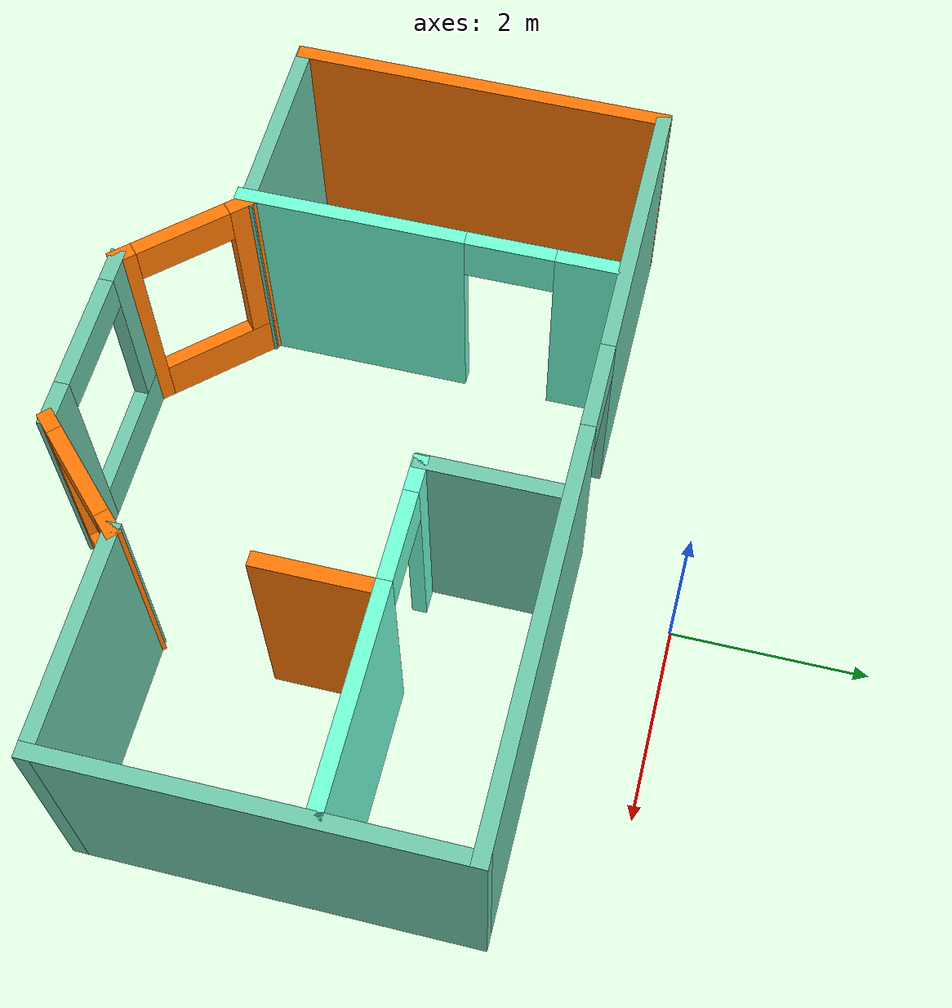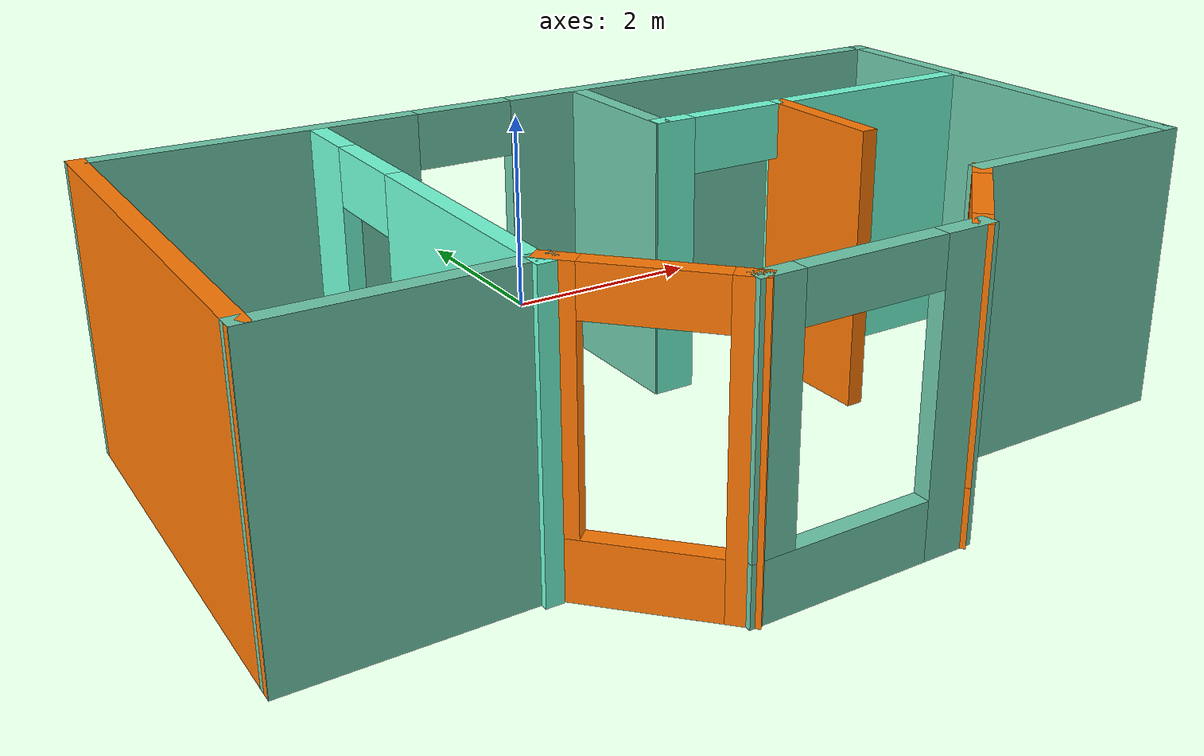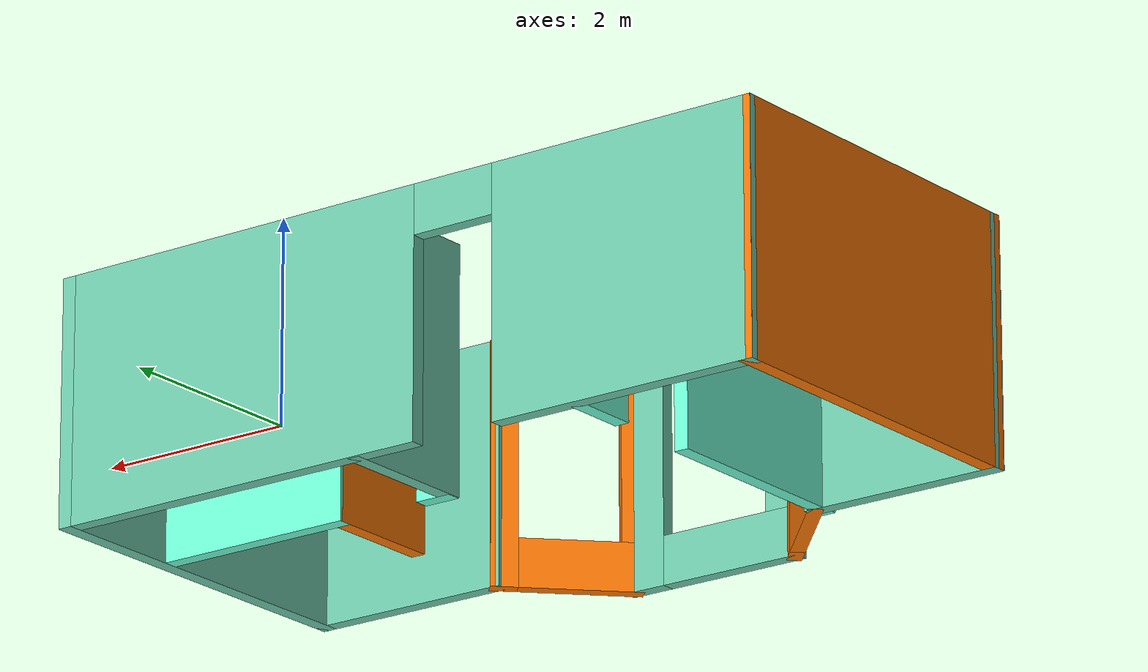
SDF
<?xml version='1.0'?>
<sdf version='1.6'>
  <model name='apartment'>
    <pose frame=''>-0.485198 -3.53763 0 0 -0 0</pose>
    <link name='Wall_0'>
      <collision name='Wall_0_Collision'>
        <geometry>
          <box>
            <size>3.93005 0.15 2.5</size>
          </box>
        </geometry>
        <pose frame=''>0 0 1.25 0 -0 0</pose>
      </collision>
      <visual name='Wall_0_Visual'>
        <pose frame=''>0 0 1.25 0 -0 0</pose>
        <geometry>
          <box>
            <size>3.93005 0.15 2.5</size>
          </box>
        </geometry>
        <material>
          <script>
            <uri>file://media/materials/scripts/gazebo.material</uri>
            <name>Gazebo/Grey</name>
          </script>
          <ambient>0.996078 0.47451 0.0196078 1</ambient>
        </material>
        <meta>
          <layer>0</layer>
        </meta>
      </visual>
      <pose frame=''>-3.9248 0.527632 0 0 -0 1.5655</pose>
    </link>
    <link name='Wall_1'>
      <pose frame=''>0.010198 2.41763 0 0 -0 0</pose>
      <visual name='Wall_1_Visual_0'>
        <pose frame=''>-2.55419 0 1.25 0 -0 0</pose>
        <geometry>
          <box>
            <size>2.89161 0.15 2.5</size>
          </box>
        </geometry>
        <material>
          <script>
            <uri>file://media/materials/scripts/gazebo.material</uri>
            <name>Gazebo/Grey</name>
          </script>
          <ambient>0.435294 0.796078 0.67451 1</ambient>
        </material>
        <meta>
          <layer>0</layer>
        </meta>
      </visual>
      <collision name='Wall_1_Collision_0'>
        <geometry>
          <box>
            <size>2.89161 0.15 2.5</size>
          </box>
        </geometry>
        <pose frame=''>-2.55419 0 1.25 0 -0 0</pose>
      </collision>
      <visual name='Wall_1_Visual_1'>
        <pose frame=''>1.89581 0 1.25 0 -0 0</pose>
        <geometry>
          <box>
            <size>4.20838 0.15 2.5</size>
          </box>
        </geometry>
        <material>
          <script>
            <uri>file://media/materials/scripts/gazebo.material</uri>
            <name>Gazebo/Grey</name>
          </script>
          <ambient>0.435294 0.796078 0.67451 1</ambient>
        </material>
        <meta>
          <layer>0</layer>
        </meta>
      </visual>
      <collision name='Wall_1_Collision_1'>
        <geometry>
          <box>
            <size>4.20838 0.15 2.5</size>
          </box>
        </geometry>
        <pose frame=''>1.89581 0 1.25 0 -0 0</pose>
      </collision>
      <visual name='Wall_1_Visual_2'>
        <pose frame=''>-0.658385 0 2.25 0 -0 0</pose>
        <geometry>
          <box>
            <size>0.9 0.15 0.5</size>
          </box>
        </geometry>
        <material>
          <script>
            <uri>file://media/materials/scripts/gazebo.material</uri>
            <name>Gazebo/Grey</name>
          </script>
          <ambient>0.435294 0.796078 0.67451 1</ambient>
        </material>
        <meta>
          <layer>0</layer>
        </meta>
      </visual>
      <collision name='Wall_1_Collision_2'>
        <geometry>
          <box>
            <size>0.9 0.15 0.5</size>
          </box>
        </geometry>
        <pose frame=''>-0.658385 0 2.25 0 -0 0</pose>
      </collision>
    </link>
    <link name='Wall_11'>
      <pose frame=''>2.21998 1.02763 0 0 -0 3.14159</pose>
      <visual name='Wall_11_Visual_0'>
        <pose frame=''>-0.640361 0 1.25 0 -0 0</pose>
        <geometry>
          <box>
            <size>2.23972 0.15 2.5</size>
          </box>
        </geometry>
        <material>
          <script>
            <uri>file://media/materials/scripts/gazebo.material</uri>
            <name>Gazebo/Grey</name>
          </script>
          <ambient>0.447059 1 0.843137 1</ambient>
        </material>
        <meta>
          <layer>0</layer>
        </meta>
      </visual>
      <collision name='Wall_11_Collision_0'>
        <geometry>
          <box>
            <size>2.23972 0.15 2.5</size>
          </box>
        </geometry>
        <pose frame=''>-0.640361 0 1.25 0 -0 0</pose>
      </collision>
      <visual name='Wall_11_Visual_1'>
        <pose frame=''>1.56986 0 1.25 0 -0 0</pose>
        <geometry>
          <box>
            <size>0.380722 0.15 2.5</size>
          </box>
        </geometry>
        <material>
          <script>
            <uri>file://media/materials/scripts/gazebo.material</uri>
            <name>Gazebo/Grey</name>
          </script>
          <ambient>0.447059 1 0.843137 1</ambient>
        </material>
        <meta>
          <layer>0</layer>
        </meta>
      </visual>
      <collision name='Wall_11_Collision_1'>
        <geometry>
          <box>
            <size>0.380722 0.15 2.5</size>
          </box>
        </geometry>
        <pose frame=''>1.56986 0 1.25 0 -0 0</pose>
      </collision>
      <visual name='Wall_11_Visual_2'>
        <pose frame=''>0.929497 0 2.25 0 -0 0</pose>
        <geometry>
          <box>
            <size>0.9 0.15 0.5</size>
          </box>
        </geometry>
        <material>
          <script>
            <uri>file://media/materials/scripts/gazebo.material</uri>
            <name>Gazebo/Grey</name>
          </script>
          <ambient>0.447059 1 0.843137 1</ambient>
        </material>
        <meta>
          <layer>0</layer>
        </meta>
      </visual>
      <collision name='Wall_11_Collision_2'>
        <geometry>
          <box>
            <size>0.9 0.15 0.5</size>
          </box>
        </geometry>
        <pose frame=''>0.929497 0 2.25 0 -0 0</pose>
      </collision>
    </link>
    <link name='Wall_12'>
      <collision name='Wall_12_Collision'>
        <geometry>
          <box>
            <size>1.5 0.15 2.5</size>
          </box>
        </geometry>
        <pose frame=''>0 0 1.25 0 -0 0</pose>
      </collision>
      <visual name='Wall_12_Visual'>
        <pose frame=''>0 0 1.25 0 -0 0</pose>
        <geometry>
          <box>
            <size>1.5 0.15 2.5</size>
          </box>
        </geometry>
        <material>
          <script>
            <uri>file://media/materials/scripts/gazebo.material</uri>
            <name>Gazebo/Grey</name>
          </script>
          <ambient>0.435294 0.796078 0.67451 1</ambient>
        </material>
        <meta>
          <layer>0</layer>
        </meta>
      </visual>
      <pose frame=''>0.523194 1.7142 0 0 -0 1.5708</pose>
    </link>
    <link name='Wall_14'>
      <collision name='Wall_14_Collision'>
        <geometry>
          <box>
            <size>1.25 0.15 2.5</size>
          </box>
        </geometry>
        <pose frame=''>0 0 1.25 0 -0 0</pose>
      </collision>
      <visual name='Wall_14_Visual'>
        <pose frame=''>0 0 1.25 0 -0 0</pose>
        <geometry>
          <box>
            <size>1.25 0.15 2.5</size>
          </box>
        </geometry>
        <material>
          <script>
            <uri>file://media/materials/scripts/gazebo.material</uri>
            <name>Gazebo/Grey</name>
          </script>
          <ambient>0.996078 0.47451 0.0196078 1</ambient>
        </material>
        <meta>
          <layer>0</layer>
        </meta>
      </visual>
      <pose frame=''>1.8152 0.447632 0 0 0 -1.5708</pose>
    </link>
    <link name='Wall_2'>
      <collision name='Wall_2_Collision'>
        <geometry>
          <box>
            <size>4 0.15 2.5</size>
          </box>
        </geometry>
        <pose frame=''>0 0 1.25 0 -0 0</pose>
      </collision>
      <visual name='Wall_2_Visual'>
        <pose frame=''>0 0 1.25 0 -0 0</pose>
        <geometry>
          <box>
            <size>4 0.15 2.5</size>
          </box>
        </geometry>
        <material>
          <script>
            <uri>file://media/materials/scripts/gazebo.material</uri>
            <name>Gazebo/Grey</name>
          </script>
          <ambient>0.435294 0.796078 0.67451 1</ambient>
        </material>
        <meta>
          <layer>0</layer>
        </meta>
      </visual>
      <pose frame=''>3.9352 0.492632 0 0 0 -1.5708</pose>
    </link>
    <link name='Wall_3'>
      <collision name='Wall_3_Collision'>
        <geometry>
          <box>
            <size>2.25 0.15 2.5</size>
          </box>
        </geometry>
        <pose frame=''>0 0 1.25 0 -0 0</pose>
      </collision>
      <visual name='Wall_3_Visual'>
        <pose frame=''>0 0 1.25 0 -0 0</pose>
        <geometry>
          <box>
            <size>2.25 0.15 2.5</size>
          </box>
        </geometry>
        <material>
          <script>
            <uri>file://media/materials/scripts/gazebo.material</uri>
            <name>Gazebo/Grey</name>
          </script>
          <ambient>0.435294 0.796078 0.67451 1</ambient>
        </material>
        <meta>
          <layer>0</layer>
        </meta>
      </visual>
      <pose frame=''>2.8852 -1.43237 0 0 -0 3.14159</pose>
    </link>
    <link name='Wall_4'>
      <pose frame=''>1.3579 -1.90966 0 0 0 -2.35619</pose>
      <visual name='Wall_4_Visual_0'>
        <pose frame=''>-0.612992 0 1.25 0 -0 0</pose>
        <geometry>
          <box>
            <size>0.274016 0.15 2.5</size>
          </box>
        </geometry>
        <material>
          <script>
            <uri>file://media/materials/scripts/gazebo.material</uri>
            <name>Gazebo/Grey</name>
          </script>
          <ambient>0.996078 0.47451 0.0196078 1</ambient>
        </material>
        <meta>
          <layer>0</layer>
        </meta>
      </visual>
      <collision name='Wall_4_Collision_0'>
        <geometry>
          <box>
            <size>0.274016 0.15 2.5</size>
          </box>
        </geometry>
        <pose frame=''>-0.612992 0 1.25 0 -0 0</pose>
      </collision>
      <visual name='Wall_4_Visual_1'>
        <pose frame=''>0.137008 0 0.25 0 -0 0</pose>
        <geometry>
          <box>
            <size>1.22598 0.15 0.5</size>
          </box>
        </geometry>
        <material>
          <script>
            <uri>file://media/materials/scripts/gazebo.material</uri>
            <name>Gazebo/Grey</name>
          </script>
          <ambient>0.996078 0.47451 0.0196078 1</ambient>
        </material>
        <meta>
          <layer>0</layer>
        </meta>
      </visual>
      <collision name='Wall_4_Collision_1'>
        <geometry>
          <box>
            <size>1.22598 0.15 0.5</size>
          </box>
        </geometry>
        <pose frame=''>0.137008 0 0.25 0 -0 0</pose>
      </collision>
      <visual name='Wall_4_Visual_2'>
        <pose frame=''>0.637008 0 1.5 0 -0 0</pose>
        <geometry>
          <box>
            <size>0.225984 0.15 2</size>
          </box>
        </geometry>
        <material>
          <script>
            <uri>file://media/materials/scripts/gazebo.material</uri>
            <name>Gazebo/Grey</name>
          </script>
          <ambient>0.996078 0.47451 0.0196078 1</ambient>
        </material>
        <meta>
          <layer>0</layer>
        </meta>
      </visual>
      <collision name='Wall_4_Collision_2'>
        <geometry>
          <box>
            <size>0.225984 0.15 2</size>
          </box>
        </geometry>
        <pose frame=''>0.637008 0 1.5 0 -0 0</pose>
      </collision>
      <visual name='Wall_4_Visual_3'>
        <pose frame=''>0.024016 0 2.3 0 -0 0</pose>
        <geometry>
          <box>
            <size>1 0.15 0.4</size>
          </box>
        </geometry>
        <material>
          <script>
            <uri>file://media/materials/scripts/gazebo.material</uri>
            <name>Gazebo/Grey</name>
          </script>
          <ambient>0.996078 0.47451 0.0196078 1</ambient>
        </material>
        <meta>
          <layer>0</layer>
        </meta>
      </visual>
      <collision name='Wall_4_Collision_3'>
        <geometry>
          <box>
            <size>1 0.15 0.4</size>
          </box>
        </geometry>
        <pose frame=''>0.024016 0 2.3 0 -0 0</pose>
      </collision>
    </link>
    <link name='Wall_5'>
      <pose frame=''>-0.054397 -2.38696 0 0 -0 3.14159</pose>
      <visual name='Wall_5_Visual_0'>
        <pose frame=''>-0.781818 0 1.25 0 -0 0</pose>
        <geometry>
          <box>
            <size>0.456365 0.15 2.5</size>
          </box>
        </geometry>
        <material>
          <script>
            <uri>file://media/materials/scripts/gazebo.material</uri>
            <name>Gazebo/Grey</name>
          </script>
          <ambient>0.435294 0.796078 0.67451 1</ambient>
        </material>
        <meta>
          <layer>0</layer>
        </meta>
      </visual>
      <collision name='Wall_5_Collision_0'>
        <geometry>
          <box>
            <size>0.456365 0.15 2.5</size>
          </box>
        </geometry>
        <pose frame=''>-0.781818 0 1.25 0 -0 0</pose>
      </collision>
      <visual name='Wall_5_Visual_1'>
        <pose frame=''>0.228182 0 0.25 0 -0 0</pose>
        <geometry>
          <box>
            <size>1.56364 0.15 0.5</size>
          </box>
        </geometry>
        <material>
          <script>
            <uri>file://media/materials/scripts/gazebo.material</uri>
            <name>Gazebo/Grey</name>
          </script>
          <ambient>0.435294 0.796078 0.67451 1</ambient>
        </material>
        <meta>
          <layer>0</layer>
        </meta>
      </visual>
      <collision name='Wall_5_Collision_1'>
        <geometry>
          <box>
            <size>1.56364 0.15 0.5</size>
          </box>
        </geometry>
        <pose frame=''>0.228182 0 0.25 0 -0 0</pose>
      </collision>
      <visual name='Wall_5_Visual_2'>
        <pose frame=''>0.828182 0 1.5 0 -0 0</pose>
        <geometry>
          <box>
            <size>0.363635 0.15 2</size>
          </box>
        </geometry>
        <material>
          <script>
            <uri>file://media/materials/scripts/gazebo.material</uri>
            <name>Gazebo/Grey</name>
          </script>
          <ambient>0.435294 0.796078 0.67451 1</ambient>
        </material>
        <meta>
          <layer>0</layer>
        </meta>
      </visual>
      <collision name='Wall_5_Collision_2'>
        <geometry>
          <box>
            <size>0.363635 0.15 2</size>
          </box>
        </geometry>
        <pose frame=''>0.828182 0 1.5 0 -0 0</pose>
      </collision>
      <visual name='Wall_5_Visual_3'>
        <pose frame=''>0.046365 0 2.3 0 -0 0</pose>
        <geometry>
          <box>
            <size>1.2 0.15 0.4</size>
          </box>
        </geometry>
        <material>
          <script>
            <uri>file://media/materials/scripts/gazebo.material</uri>
            <name>Gazebo/Grey</name>
          </script>
          <ambient>0.435294 0.796078 0.67451 1</ambient>
        </material>
        <meta>
          <layer>0</layer>
        </meta>
      </visual>
      <collision name='Wall_5_Collision_3'>
        <geometry>
          <box>
            <size>1.2 0.15 0.4</size>
          </box>
        </geometry>
        <pose frame=''>0.046365 0 2.3 0 -0 0</pose>
      </collision>
    </link>
    <link name='Wall_6'>
      <pose frame=''>-1.46669 -1.87467 0 0 -0 2.32084</pose>
      <visual name='Wall_6_Visual_0'>
        <pose frame=''>-0.650033 0 1.25 0 -0 0</pose>
        <geometry>
          <box>
            <size>0.250307 0.15 2.5</size>
          </box>
        </geometry>
        <material>
          <script>
            <uri>file://media/materials/scripts/gazebo.material</uri>
            <name>Gazebo/Grey</name>
          </script>
          <ambient>0.996078 0.47451 0.0196078 1</ambient>
        </material>
        <meta>
          <layer>0</layer>
        </meta>
      </visual>
      <collision name='Wall_6_Collision_0'>
        <geometry>
          <box>
            <size>0.250307 0.15 2.5</size>
          </box>
        </geometry>
        <pose frame=''>-0.650033 0 1.25 0 -0 0</pose>
      </collision>
      <visual name='Wall_6_Visual_1'>
        <pose frame=''>0.125154 0 0.25 0 -0 0</pose>
        <geometry>
          <box>
            <size>1.30007 0.15 0.5</size>
          </box>
        </geometry>
        <material>
          <script>
            <uri>file://media/materials/scripts/gazebo.material</uri>
            <name>Gazebo/Grey</name>
          </script>
          <ambient>0.996078 0.47451 0.0196078 1</ambient>
        </material>
        <meta>
          <layer>0</layer>
        </meta>
      </visual>
      <collision name='Wall_6_Collision_1'>
        <geometry>
          <box>
            <size>1.30007 0.15 0.5</size>
          </box>
        </geometry>
        <pose frame=''>0.125154 0 0.25 0 -0 0</pose>
      </collision>
      <visual name='Wall_6_Visual_2'>
        <pose frame=''>0.625154 0 1.5 0 -0 0</pose>
        <geometry>
          <box>
            <size>0.300065 0.15 2</size>
          </box>
        </geometry>
        <material>
          <script>
            <uri>file://media/materials/scripts/gazebo.material</uri>
            <name>Gazebo/Grey</name>
          </script>
          <ambient>0.996078 0.47451 0.0196078 1</ambient>
        </material>
        <meta>
          <layer>0</layer>
        </meta>
      </visual>
      <collision name='Wall_6_Collision_2'>
        <geometry>
          <box>
            <size>0.300065 0.15 2</size>
          </box>
        </geometry>
        <pose frame=''>0.625154 0 1.5 0 -0 0</pose>
      </collision>
      <visual name='Wall_6_Visual_3'>
        <pose frame=''>-0.024879 0 2.3 0 -0 0</pose>
        <geometry>
          <box>
            <size>1 0.15 0.4</size>
          </box>
        </geometry>
        <material>
          <script>
            <uri>file://media/materials/scripts/gazebo.material</uri>
            <name>Gazebo/Grey</name>
          </script>
          <ambient>0.996078 0.47451 0.0196078 1</ambient>
        </material>
        <meta>
          <layer>0</layer>
        </meta>
      </visual>
      <collision name='Wall_6_Collision_3'>
        <geometry>
          <box>
            <size>1 0.15 0.4</size>
          </box>
        </geometry>
        <pose frame=''>-0.024879 0 2.3 0 -0 0</pose>
      </collision>
    </link>
    <link name='Wall_7'>
      <collision name='Wall_7_Collision'>
        <geometry>
          <box>
            <size>2.14081 0.15 2.5</size>
          </box>
        </geometry>
        <pose frame=''>0 0 1.25 0 -0 0</pose>
      </collision>
      <visual name='Wall_7_Visual'>
        <pose frame=''>0 0 1.25 0 -0 0</pose>
        <geometry>
          <box>
            <size>2.14081 0.15 2.5</size>
          </box>
        </geometry>
        <material>
          <script>
            <uri>file://media/materials/scripts/gazebo.material</uri>
            <name>Gazebo/Grey</name>
          </script>
          <ambient>0.435294 0.796078 0.67451 1</ambient>
        </material>
        <meta>
          <layer>0</layer>
        </meta>
      </visual>
      <pose frame=''>-2.9394 -1.37237 0 0 -0 3.14159</pose>
    </link>
    <link name='Wall_9'>
      <pose frame=''>-1.99807 0.468784 0 0 0 -1.57252</pose>
      <visual name='Wall_9_Visual_0'>
        <pose frame=''>-1.6153 0 1.25 0 -0 0</pose>
        <geometry>
          <box>
            <size>0.717099 0.15 2.5</size>
          </box>
        </geometry>
        <material>
          <script>
            <uri>file://media/materials/scripts/gazebo.material</uri>
            <name>Gazebo/Grey</name>
          </script>
          <ambient>0.447059 1 0.843137 1</ambient>
        </material>
        <meta>
          <layer>0</layer>
        </meta>
      </visual>
      <collision name='Wall_9_Collision_0'>
        <geometry>
          <box>
            <size>0.717099 0.15 2.5</size>
          </box>
        </geometry>
        <pose frame=''>-1.6153 0 1.25 0 -0 0</pose>
      </collision>
      <visual name='Wall_9_Visual_1'>
        <pose frame=''>0.80855 0 1.25 0 -0 0</pose>
        <geometry>
          <box>
            <size>2.3306 0.15 2.5</size>
          </box>
        </geometry>
        <material>
          <script>
            <uri>file://media/materials/scripts/gazebo.material</uri>
            <name>Gazebo/Grey</name>
          </script>
          <ambient>0.447059 1 0.843137 1</ambient>
        </material>
        <meta>
          <layer>0</layer>
        </meta>
      </visual>
      <collision name='Wall_9_Collision_1'>
        <geometry>
          <box>
            <size>2.3306 0.15 2.5</size>
          </box>
        </geometry>
        <pose frame=''>0.80855 0 1.25 0 -0 0</pose>
      </collision>
      <visual name='Wall_9_Visual_2'>
        <pose frame=''>-0.806753 0 2.25 0 -0 0</pose>
        <geometry>
          <box>
            <size>0.9 0.15 0.5</size>
          </box>
        </geometry>
        <material>
          <script>
            <uri>file://media/materials/scripts/gazebo.material</uri>
            <name>Gazebo/Grey</name>
          </script>
          <ambient>0.447059 1 0.843137 1</ambient>
        </material>
        <meta>
          <layer>0</layer>
        </meta>
      </visual>
      <collision name='Wall_9_Collision_2'>
        <geometry>
          <box>
            <size>0.9 0.15 0.5</size>
          </box>
        </geometry>
        <pose frame=''>-0.806753 0 2.25 0 -0 0</pose>
      </collision>
    </link>
    <static>1</static>
  </model>
</sdf>
